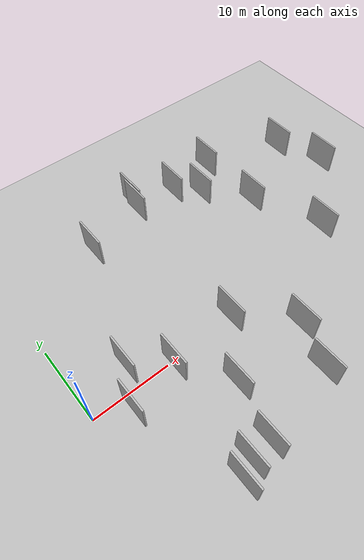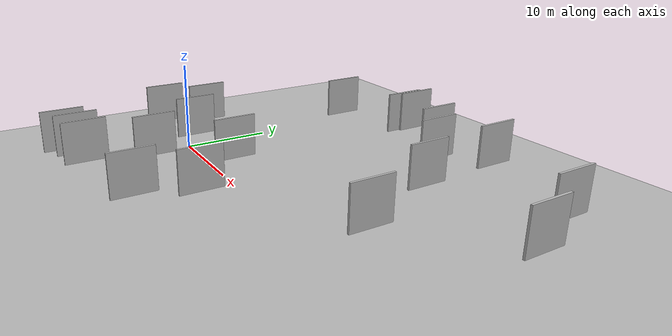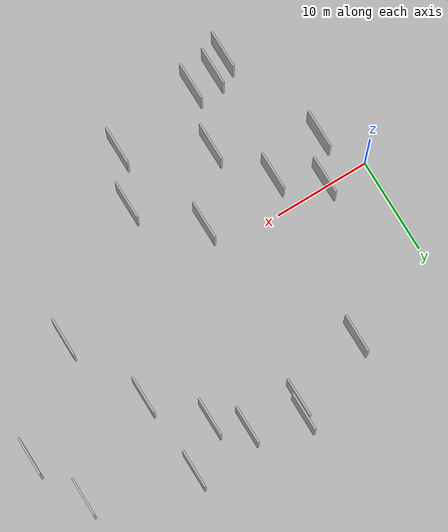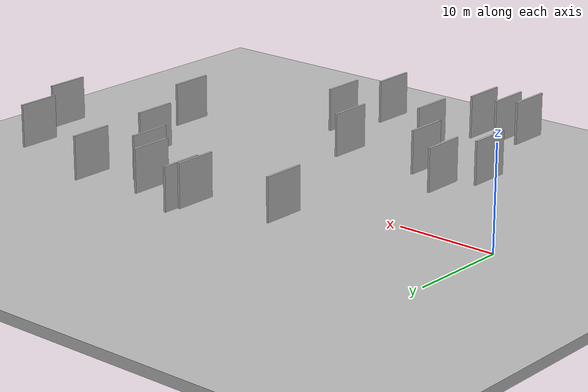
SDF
<?xml version="1.0" encoding="utf-8"?>

<sdf version="1.6">

   <world name="default">

      <gui fullscreen="0">

         <camera name="user_camera">

            <pose>-15 0 4.57585 0 0 0</pose>

            <view_controller>orbit</view_controller>

         </camera>

      </gui>

      <scene>

         <sky>

           <clouds>

             <speed>12</speed>

           </clouds>

         </sky>

         <ambient>0.4 0.4 0.4 1</ambient>

         <background>0.7 0.7 0.7 1</background>

         <shadows>1</shadows>

      </scene>

      <gravity>0 0 -9.8066</gravity>

      <magnetic_field>6e-06 2.3e-05 -4.2e-05</magnetic_field>

      <physics default="0" name="default_physics" type="ode">

         <ode>

            <solver>

               <type>quick</type>

               <iters>10</iters>

               <sor>1.0</sor>

               <use_dynamic_moi_rescaling>0</use_dynamic_moi_rescaling>

            </solver>

            <constraints>

               <cfm>0</cfm>

               <erp>0.2</erp>

               <contact_max_correcting_vel>100</contact_max_correcting_vel>

               <contact_surface_layer>0.001</contact_surface_layer>

            </constraints>

         </ode>

         <max_step_size>0.004</max_step_size>

         <real_time_factor>1</real_time_factor>

         <real_time_update_rate>250</real_time_update_rate>

      </physics>

      <light name="sun" type="directional">

         <cast_shadows>1</cast_shadows>

         <pose>0 0 10 0 0 0</pose>

         <diffuse>0.8 0.8 0.8 1</diffuse>

         <specular>0.2 0.2 0.2 1</specular>

         <attenuation>

            <range>1000</range>

            <constant>0.9</constant>

            <linear>0.01</linear>

            <quadratic>0.001</quadratic>

         </attenuation>

         <direction>-0.5 0.1 -0.9</direction>

      </light>

      <include>

         <name>ground_plane_1</name>

         <uri>model://HANNAS_ground_plane</uri>

         <pose>0 0 0  0 0 0</pose>

      </include>

      <include>

         <name>ground_plane_2</name>

         <uri>model://HANNAS_ground_plane</uri>

         <pose>100 0 0  0 0 0</pose>

      </include>

      <model name="HANNAS_wall_1">

         <static>1</static>

         <pose frame="">18.8763 18.6166 5.0 0.000000 0.000000 1.570796</pose>

         <link name="link">

            <pose frame="">0 0 2.00 0 0 0</pose>

            <collision name="collision">

               <geometry>

                  <box>

                     <size>4.00 0.2 4.00</size>

                  </box>

               </geometry>

               <max_contacts>10</max_contacts>

               <surface>

                  <contact>

                     <ode/>

                  </contact>

                  <bounce/>

                  <friction>

                     <torsional>

                        <ode/>

                     </torsional>

                     <ode/>

                  </friction>

               </surface>

            </collision>

            <visual name="visual">

               <cast_shadows>0</cast_shadows>

               <geometry>

                  <box>

                     <size>4.00 0.2 4.00</size>

                  </box>

               </geometry>

               <material>

                  <script>

                     <uri>model://HANNAS_wall/materials/scripts</uri>

                     <uri>model://HANNAS_wall/materials/textures</uri>

                     <name>vrc/HANNAS_wall</name>

                  </script>

               </material>

            </visual>

            <self_collide>0</self_collide>

            <enable_wind>0</enable_wind>

            <kinematic>0</kinematic>

         </link>

      </model>

      <model name="HANNAS_wall_2">

         <static>1</static>

         <pose frame="">18.5828 17.2157 5.0 0.000000 0.000000 1.570796</pose>

         <link name="link">

            <pose frame="">0 0 2.00 0 0 0</pose>

            <collision name="collision">

               <geometry>

                  <box>

                     <size>4.00 0.2 4.00</size>

                  </box>

               </geometry>

               <max_contacts>10</max_contacts>

               <surface>

                  <contact>

                     <ode/>

                  </contact>

                  <bounce/>

                  <friction>

                     <torsional>

                        <ode/>

                     </torsional>

                     <ode/>

                  </friction>

               </surface>

            </collision>

            <visual name="visual">

               <cast_shadows>0</cast_shadows>

               <geometry>

                  <box>

                     <size>4.00 0.2 4.00</size>

                  </box>

               </geometry>

               <material>

                  <script>

                     <uri>model://HANNAS_wall/materials/scripts</uri>

                     <uri>model://HANNAS_wall/materials/textures</uri>

                     <name>vrc/HANNAS_wall</name>

                  </script>

               </material>

            </visual>

            <self_collide>0</self_collide>

            <enable_wind>0</enable_wind>

            <kinematic>0</kinematic>

         </link>

      </model>

      <model name="HANNAS_wall_3">

         <static>1</static>

         <pose frame="">7.1273 -15.1228 5.0 0.000000 0.000000 1.570796</pose>

         <link name="link">

            <pose frame="">0 0 2.00 0 0 0</pose>

            <collision name="collision">

               <geometry>

                  <box>

                     <size>4.00 0.2 4.00</size>

                  </box>

               </geometry>

               <max_contacts>10</max_contacts>

               <surface>

                  <contact>

                     <ode/>

                  </contact>

                  <bounce/>

                  <friction>

                     <torsional>

                        <ode/>

                     </torsional>

                     <ode/>

                  </friction>

               </surface>

            </collision>

            <visual name="visual">

               <cast_shadows>0</cast_shadows>

               <geometry>

                  <box>

                     <size>4.00 0.2 4.00</size>

                  </box>

               </geometry>

               <material>

                  <script>

                     <uri>model://HANNAS_wall/materials/scripts</uri>

                     <uri>model://HANNAS_wall/materials/textures</uri>

                     <name>vrc/HANNAS_wall</name>

                  </script>

               </material>

            </visual>

            <self_collide>0</self_collide>

            <enable_wind>0</enable_wind>

            <kinematic>0</kinematic>

         </link>

      </model>

      <model name="HANNAS_wall_4">

         <static>1</static>

         <pose frame="">24.0103 16.9003 5.0 0.000000 0.000000 1.570796</pose>

         <link name="link">

            <pose frame="">0 0 2.00 0 0 0</pose>

            <collision name="collision">

               <geometry>

                  <box>

                     <size>4.00 0.2 4.00</size>

                  </box>

               </geometry>

               <max_contacts>10</max_contacts>

               <surface>

                  <contact>

                     <ode/>

                  </contact>

                  <bounce/>

                  <friction>

                     <torsional>

                        <ode/>

                     </torsional>

                     <ode/>

                  </friction>

               </surface>

            </collision>

            <visual name="visual">

               <cast_shadows>0</cast_shadows>

               <geometry>

                  <box>

                     <size>4.00 0.2 4.00</size>

                  </box>

               </geometry>

               <material>

                  <script>

                     <uri>model://HANNAS_wall/materials/scripts</uri>

                     <uri>model://HANNAS_wall/materials/textures</uri>

                     <name>vrc/HANNAS_wall</name>

                  </script>

               </material>

            </visual>

            <self_collide>0</self_collide>

            <enable_wind>0</enable_wind>

            <kinematic>0</kinematic>

         </link>

      </model>

      <model name="HANNAS_wall_5">

         <static>1</static>

         <pose frame="">8.7980 -14.2248 5.0 0.000000 0.000000 1.570796</pose>

         <link name="link">

            <pose frame="">0 0 2.00 0 0 0</pose>

            <collision name="collision">

               <geometry>

                  <box>

                     <size>4.00 0.2 4.00</size>

                  </box>

               </geometry>

               <max_contacts>10</max_contacts>

               <surface>

                  <contact>

                     <ode/>

                  </contact>

                  <bounce/>

                  <friction>

                     <torsional>

                        <ode/>

                     </torsional>

                     <ode/>

                  </friction>

               </surface>

            </collision>

            <visual name="visual">

               <cast_shadows>0</cast_shadows>

               <geometry>

                  <box>

                     <size>4.00 0.2 4.00</size>

                  </box>

               </geometry>

               <material>

                  <script>

                     <uri>model://HANNAS_wall/materials/scripts</uri>

                     <uri>model://HANNAS_wall/materials/textures</uri>

                     <name>vrc/HANNAS_wall</name>

                  </script>

               </material>

            </visual>

            <self_collide>0</self_collide>

            <enable_wind>0</enable_wind>

            <kinematic>0</kinematic>

         </link>

      </model>

      <model name="HANNAS_wall_6">

         <static>1</static>

         <pose frame="">17.3325 -1.8003 5.0 0.000000 0.000000 1.570796</pose>

         <link name="link">

            <pose frame="">0 0 2.00 0 0 0</pose>

            <collision name="collision">

               <geometry>

                  <box>

                     <size>4.00 0.2 4.00</size>

                  </box>

               </geometry>

               <max_contacts>10</max_contacts>

               <surface>

                  <contact>

                     <ode/>

                  </contact>

                  <bounce/>

                  <friction>

                     <torsional>

                        <ode/>

                     </torsional>

                     <ode/>

                  </friction>

               </surface>

            </collision>

            <visual name="visual">

               <cast_shadows>0</cast_shadows>

               <geometry>

                  <box>

                     <size>4.00 0.2 4.00</size>

                  </box>

               </geometry>

               <material>

                  <script>

                     <uri>model://HANNAS_wall/materials/scripts</uri>

                     <uri>model://HANNAS_wall/materials/textures</uri>

                     <name>vrc/HANNAS_wall</name>

                  </script>

               </material>

            </visual>

            <self_collide>0</self_collide>

            <enable_wind>0</enable_wind>

            <kinematic>0</kinematic>

         </link>

      </model>

      <model name="HANNAS_wall_7">

         <static>1</static>

         <pose frame="">3.3609 -3.6664 5.0 0.000000 0.000000 1.570796</pose>

         <link name="link">

            <pose frame="">0 0 2.00 0 0 0</pose>

            <collision name="collision">

               <geometry>

                  <box>

                     <size>4.00 0.2 4.00</size>

                  </box>

               </geometry>

               <max_contacts>10</max_contacts>

               <surface>

                  <contact>

                     <ode/>

                  </contact>

                  <bounce/>

                  <friction>

                     <torsional>

                        <ode/>

                     </torsional>

                     <ode/>

                  </friction>

               </surface>

            </collision>

            <visual name="visual">

               <cast_shadows>0</cast_shadows>

               <geometry>

                  <box>

                     <size>4.00 0.2 4.00</size>

                  </box>

               </geometry>

               <material>

                  <script>

                     <uri>model://HANNAS_wall/materials/scripts</uri>

                     <uri>model://HANNAS_wall/materials/textures</uri>

                     <name>vrc/HANNAS_wall</name>

                  </script>

               </material>

            </visual>

            <self_collide>0</self_collide>

            <enable_wind>0</enable_wind>

            <kinematic>0</kinematic>

         </link>

      </model>

      <model name="HANNAS_wall_8">

         <static>1</static>

         <pose frame="">10.7779 14.9341 5.0 0.000000 0.000000 1.570796</pose>

         <link name="link">

            <pose frame="">0 0 2.00 0 0 0</pose>

            <collision name="collision">

               <geometry>

                  <box>

                     <size>4.00 0.2 4.00</size>

                  </box>

               </geometry>

               <max_contacts>10</max_contacts>

               <surface>

                  <contact>

                     <ode/>

                  </contact>

                  <bounce/>

                  <friction>

                     <torsional>

                        <ode/>

                     </torsional>

                     <ode/>

                  </friction>

               </surface>

            </collision>

            <visual name="visual">

               <cast_shadows>0</cast_shadows>

               <geometry>

                  <box>

                     <size>4.00 0.2 4.00</size>

                  </box>

               </geometry>

               <material>

                  <script>

                     <uri>model://HANNAS_wall/materials/scripts</uri>

                     <uri>model://HANNAS_wall/materials/textures</uri>

                     <name>vrc/HANNAS_wall</name>

                  </script>

               </material>

            </visual>

            <self_collide>0</self_collide>

            <enable_wind>0</enable_wind>

            <kinematic>0</kinematic>

         </link>

      </model>

      <model name="HANNAS_wall_9">

         <static>1</static>

         <pose frame="">26.6018 14.4527 5.0 0.000000 0.000000 1.570796</pose>

         <link name="link">

            <pose frame="">0 0 2.00 0 0 0</pose>

            <collision name="collision">

               <geometry>

                  <box>

                     <size>4.00 0.2 4.00</size>

                  </box>

               </geometry>

               <max_contacts>10</max_contacts>

               <surface>

                  <contact>

                     <ode/>

                  </contact>

                  <bounce/>

                  <friction>

                     <torsional>

                        <ode/>

                     </torsional>

                     <ode/>

                  </friction>

               </surface>

            </collision>

            <visual name="visual">

               <cast_shadows>0</cast_shadows>

               <geometry>

                  <box>

                     <size>4.00 0.2 4.00</size>

                  </box>

               </geometry>

               <material>

                  <script>

                     <uri>model://HANNAS_wall/materials/scripts</uri>

                     <uri>model://HANNAS_wall/materials/textures</uri>

                     <name>vrc/HANNAS_wall</name>

                  </script>

               </material>

            </visual>

            <self_collide>0</self_collide>

            <enable_wind>0</enable_wind>

            <kinematic>0</kinematic>

         </link>

      </model>

      <model name="HANNAS_wall_10">

         <static>1</static>

         <pose frame="">5.2843 0.4416 5.0 0.000000 0.000000 1.570796</pose>

         <link name="link">

            <pose frame="">0 0 2.00 0 0 0</pose>

            <collision name="collision">

               <geometry>

                  <box>

                     <size>4.00 0.2 4.00</size>

                  </box>

               </geometry>

               <max_contacts>10</max_contacts>

               <surface>

                  <contact>

                     <ode/>

                  </contact>

                  <bounce/>

                  <friction>

                     <torsional>

                        <ode/>

                     </torsional>

                     <ode/>

                  </friction>

               </surface>

            </collision>

            <visual name="visual">

               <cast_shadows>0</cast_shadows>

               <geometry>

                  <box>

                     <size>4.00 0.2 4.00</size>

                  </box>

               </geometry>

               <material>

                  <script>

                     <uri>model://HANNAS_wall/materials/scripts</uri>

                     <uri>model://HANNAS_wall/materials/textures</uri>

                     <name>vrc/HANNAS_wall</name>

                  </script>

               </material>

            </visual>

            <self_collide>0</self_collide>

            <enable_wind>0</enable_wind>

            <kinematic>0</kinematic>

         </link>

      </model>

      <model name="HANNAS_wall_11">

         <static>1</static>

         <pose frame="">9.2692 -2.4537 5.0 0.000000 0.000000 1.570796</pose>

         <link name="link">

            <pose frame="">0 0 2.00 0 0 0</pose>

            <collision name="collision">

               <geometry>

                  <box>

                     <size>4.00 0.2 4.00</size>

                  </box>

               </geometry>

               <max_contacts>10</max_contacts>

               <surface>

                  <contact>

                     <ode/>

                  </contact>

                  <bounce/>

                  <friction>

                     <torsional>

                        <ode/>

                     </torsional>

                     <ode/>

                  </friction>

               </surface>

            </collision>

            <visual name="visual">

               <cast_shadows>0</cast_shadows>

               <geometry>

                  <box>

                     <size>4.00 0.2 4.00</size>

                  </box>

               </geometry>

               <material>

                  <script>

                     <uri>model://HANNAS_wall/materials/scripts</uri>

                     <uri>model://HANNAS_wall/materials/textures</uri>

                     <name>vrc/HANNAS_wall</name>

                  </script>

               </material>

            </visual>

            <self_collide>0</self_collide>

            <enable_wind>0</enable_wind>

            <kinematic>0</kinematic>

         </link>

      </model>

      <model name="HANNAS_wall_12">

         <static>1</static>

         <pose frame="">22.5762 -7.2745 5.0 0.000000 0.000000 1.570796</pose>

         <link name="link">

            <pose frame="">0 0 2.00 0 0 0</pose>

            <collision name="collision">

               <geometry>

                  <box>

                     <size>4.00 0.2 4.00</size>

                  </box>

               </geometry>

               <max_contacts>10</max_contacts>

               <surface>

                  <contact>

                     <ode/>

                  </contact>

                  <bounce/>

                  <friction>

                     <torsional>

                        <ode/>

                     </torsional>

                     <ode/>

                  </friction>

               </surface>

            </collision>

            <visual name="visual">

               <cast_shadows>0</cast_shadows>

               <geometry>

                  <box>

                     <size>4.00 0.2 4.00</size>

                  </box>

               </geometry>

               <material>

                  <script>

                     <uri>model://HANNAS_wall/materials/scripts</uri>

                     <uri>model://HANNAS_wall/materials/textures</uri>

                     <name>vrc/HANNAS_wall</name>

                  </script>

               </material>

            </visual>

            <self_collide>0</self_collide>

            <enable_wind>0</enable_wind>

            <kinematic>0</kinematic>

         </link>

      </model>

      <model name="HANNAS_wall_13">

         <static>1</static>

         <pose frame="">42.7972 8.8606 5.0 0.000000 0.000000 1.570796</pose>

         <link name="link">

            <pose frame="">0 0 2.00 0 0 0</pose>

            <collision name="collision">

               <geometry>

                  <box>

                     <size>4.00 0.2 4.00</size>

                  </box>

               </geometry>

               <max_contacts>10</max_contacts>

               <surface>

                  <contact>

                     <ode/>

                  </contact>

                  <bounce/>

                  <friction>

                     <torsional>

                        <ode/>

                     </torsional>

                     <ode/>

                  </friction>

               </surface>

            </collision>

            <visual name="visual">

               <cast_shadows>0</cast_shadows>

               <geometry>

                  <box>

                     <size>4.00 0.2 4.00</size>

                  </box>

               </geometry>

               <material>

                  <script>

                     <uri>model://HANNAS_wall/materials/scripts</uri>

                     <uri>model://HANNAS_wall/materials/textures</uri>

                     <name>vrc/HANNAS_wall</name>

                  </script>

               </material>

            </visual>

            <self_collide>0</self_collide>

            <enable_wind>0</enable_wind>

            <kinematic>0</kinematic>

         </link>

      </model>

      <model name="HANNAS_wall_14">

         <static>1</static>

         <pose frame="">30.3722 17.8320 5.0 0.000000 0.000000 1.570796</pose>

         <link name="link">

            <pose frame="">0 0 2.00 0 0 0</pose>

            <collision name="collision">

               <geometry>

                  <box>

                     <size>4.00 0.2 4.00</size>

                  </box>

               </geometry>

               <max_contacts>10</max_contacts>

               <surface>

                  <contact>

                     <ode/>

                  </contact>

                  <bounce/>

                  <friction>

                     <torsional>

                        <ode/>

                     </torsional>

                     <ode/>

                  </friction>

               </surface>

            </collision>

            <visual name="visual">

               <cast_shadows>0</cast_shadows>

               <geometry>

                  <box>

                     <size>4.00 0.2 4.00</size>

                  </box>

               </geometry>

               <material>

                  <script>

                     <uri>model://HANNAS_wall/materials/scripts</uri>

                     <uri>model://HANNAS_wall/materials/textures</uri>

                     <name>vrc/HANNAS_wall</name>

                  </script>

               </material>

            </visual>

            <self_collide>0</self_collide>

            <enable_wind>0</enable_wind>

            <kinematic>0</kinematic>

         </link>

      </model>

      <model name="HANNAS_wall_15">

         <static>1</static>

         <pose frame="">34.4041 0.8771 5.0 0.000000 0.000000 1.570796</pose>

         <link name="link">

            <pose frame="">0 0 2.00 0 0 0</pose>

            <collision name="collision">

               <geometry>

                  <box>

                     <size>4.00 0.2 4.00</size>

                  </box>

               </geometry>

               <max_contacts>10</max_contacts>

               <surface>

                  <contact>

                     <ode/>

                  </contact>

                  <bounce/>

                  <friction>

                     <torsional>

                        <ode/>

                     </torsional>

                     <ode/>

                  </friction>

               </surface>

            </collision>

            <visual name="visual">

               <cast_shadows>0</cast_shadows>

               <geometry>

                  <box>

                     <size>4.00 0.2 4.00</size>

                  </box>

               </geometry>

               <material>

                  <script>

                     <uri>model://HANNAS_wall/materials/scripts</uri>

                     <uri>model://HANNAS_wall/materials/textures</uri>

                     <name>vrc/HANNAS_wall</name>

                  </script>

               </material>

            </visual>

            <self_collide>0</self_collide>

            <enable_wind>0</enable_wind>

            <kinematic>0</kinematic>

         </link>

      </model>

      <model name="HANNAS_wall_16">

         <static>1</static>

         <pose frame="">30.8314 9.4403 5.0 0.000000 0.000000 1.570796</pose>

         <link name="link">

            <pose frame="">0 0 2.00 0 0 0</pose>

            <collision name="collision">

               <geometry>

                  <box>

                     <size>4.00 0.2 4.00</size>

                  </box>

               </geometry>

               <max_contacts>10</max_contacts>

               <surface>

                  <contact>

                     <ode/>

                  </contact>

                  <bounce/>

                  <friction>

                     <torsional>

                        <ode/>

                     </torsional>

                     <ode/>

                  </friction>

               </surface>

            </collision>

            <visual name="visual">

               <cast_shadows>0</cast_shadows>

               <geometry>

                  <box>

                     <size>4.00 0.2 4.00</size>

                  </box>

               </geometry>

               <material>

                  <script>

                     <uri>model://HANNAS_wall/materials/scripts</uri>

                     <uri>model://HANNAS_wall/materials/textures</uri>

                     <name>vrc/HANNAS_wall</name>

                  </script>

               </material>

            </visual>

            <self_collide>0</self_collide>

            <enable_wind>0</enable_wind>

            <kinematic>0</kinematic>

         </link>

      </model>

      <model name="HANNAS_wall_17">

         <static>1</static>

         <pose frame="">40.4534 14.6838 5.0 0.000000 0.000000 1.570796</pose>

         <link name="link">

            <pose frame="">0 0 2.00 0 0 0</pose>

            <collision name="collision">

               <geometry>

                  <box>

                     <size>4.00 0.2 4.00</size>

                  </box>

               </geometry>

               <max_contacts>10</max_contacts>

               <surface>

                  <contact>

                     <ode/>

                  </contact>

                  <bounce/>

                  <friction>

                     <torsional>

                        <ode/>

                     </torsional>

                     <ode/>

                  </friction>

               </surface>

            </collision>

            <visual name="visual">

               <cast_shadows>0</cast_shadows>

               <geometry>

                  <box>

                     <size>4.00 0.2 4.00</size>

                  </box>

               </geometry>

               <material>

                  <script>

                     <uri>model://HANNAS_wall/materials/scripts</uri>

                     <uri>model://HANNAS_wall/materials/textures</uri>

                     <name>vrc/HANNAS_wall</name>

                  </script>

               </material>

            </visual>

            <self_collide>0</self_collide>

            <enable_wind>0</enable_wind>

            <kinematic>0</kinematic>

         </link>

      </model>

      <model name="HANNAS_wall_18">

         <static>1</static>

         <pose frame="">12.8412 -7.9581 5.0 0.000000 0.000000 1.570796</pose>

         <link name="link">

            <pose frame="">0 0 2.00 0 0 0</pose>

            <collision name="collision">

               <geometry>

                  <box>

                     <size>4.00 0.2 4.00</size>

                  </box>

               </geometry>

               <max_contacts>10</max_contacts>

               <surface>

                  <contact>

                     <ode/>

                  </contact>

                  <bounce/>

                  <friction>

                     <torsional>

                        <ode/>

                     </torsional>

                     <ode/>

                  </friction>

               </surface>

            </collision>

            <visual name="visual">

               <cast_shadows>0</cast_shadows>

               <geometry>

                  <box>

                     <size>4.00 0.2 4.00</size>

                  </box>

               </geometry>

               <material>

                  <script>

                     <uri>model://HANNAS_wall/materials/scripts</uri>

                     <uri>model://HANNAS_wall/materials/textures</uri>

                     <name>vrc/HANNAS_wall</name>

                  </script>

               </material>

            </visual>

            <self_collide>0</self_collide>

            <enable_wind>0</enable_wind>

            <kinematic>0</kinematic>

         </link>

      </model>

      <model name="HANNAS_wall_19">

         <static>1</static>

         <pose frame="">20.6259 -12.3068 5.0 0.000000 0.000000 1.570796</pose>

         <link name="link">

            <pose frame="">0 0 2.00 0 0 0</pose>

            <collision name="collision">

               <geometry>

                  <box>

                     <size>4.00 0.2 4.00</size>

                  </box>

               </geometry>

               <max_contacts>10</max_contacts>

               <surface>

                  <contact>

                     <ode/>

                  </contact>

                  <bounce/>

                  <friction>

                     <torsional>

                        <ode/>

                     </torsional>

                     <ode/>

                  </friction>

               </surface>

            </collision>

            <visual name="visual">

               <cast_shadows>0</cast_shadows>

               <geometry>

                  <box>

                     <size>4.00 0.2 4.00</size>

                  </box>

               </geometry>

               <material>

                  <script>

                     <uri>model://HANNAS_wall/materials/scripts</uri>

                     <uri>model://HANNAS_wall/materials/textures</uri>

                     <name>vrc/HANNAS_wall</name>

                  </script>

               </material>

            </visual>

            <self_collide>0</self_collide>

            <enable_wind>0</enable_wind>

            <kinematic>0</kinematic>

         </link>

      </model>

      <model name="HANNAS_wall_20">

         <static>1</static>

         <pose frame="">11.3657 -14.0143 5.0 0.000000 0.000000 1.570796</pose>

         <link name="link">

            <pose frame="">0 0 2.00 0 0 0</pose>

            <collision name="collision">

               <geometry>

                  <box>

                     <size>4.00 0.2 4.00</size>

                  </box>

               </geometry>

               <max_contacts>10</max_contacts>

               <surface>

                  <contact>

                     <ode/>

                  </contact>

                  <bounce/>

                  <friction>

                     <torsional>

                        <ode/>

                     </torsional>

                     <ode/>

                  </friction>

               </surface>

            </collision>

            <visual name="visual">

               <cast_shadows>0</cast_shadows>

               <geometry>

                  <box>

                     <size>4.00 0.2 4.00</size>

                  </box>

               </geometry>

               <material>

                  <script>

                     <uri>model://HANNAS_wall/materials/scripts</uri>

                     <uri>model://HANNAS_wall/materials/textures</uri>

                     <name>vrc/HANNAS_wall</name>

                  </script>

               </material>

            </visual>

            <self_collide>0</self_collide>

            <enable_wind>0</enable_wind>

            <kinematic>0</kinematic>

         </link>

      </model>

   </world>

</sdf>

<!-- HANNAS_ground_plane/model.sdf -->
<sdf version="1.4">
<model name="HANNAS_ground_plane">
  <static>true</static>
    <link name="link">
      <collision name="collision">
        <geometry>
          <plane>
            <normal>0 0 1</normal>
            <size>1000 1000</size>
          </plane>
        </geometry>
        <surface>
          <friction>
            <ode>
              <mu>100</mu>
              <mu2>50</mu2>
            </ode>
          </friction>
        </surface>
      </collision>
      <visual name="visual">
        <cast_shadows>false</cast_shadows>
        <geometry>
          <plane>
            <normal>0 0 1</normal>
            <size>1000 1000</size>
          </plane>
        </geometry>
        <material>
          <script>
            <uri>model://HANNAS_ground_plane/materials/scripts/HANNAS_ground_plane.material</uri>
	    <uri>model://HANNAS_ground_plane/materials/textures</uri>
            <name>HANNASGroundPlane/Image</name>
          </script>
        </material>
      </visual>
    </link>
  </model>
</sdf>
